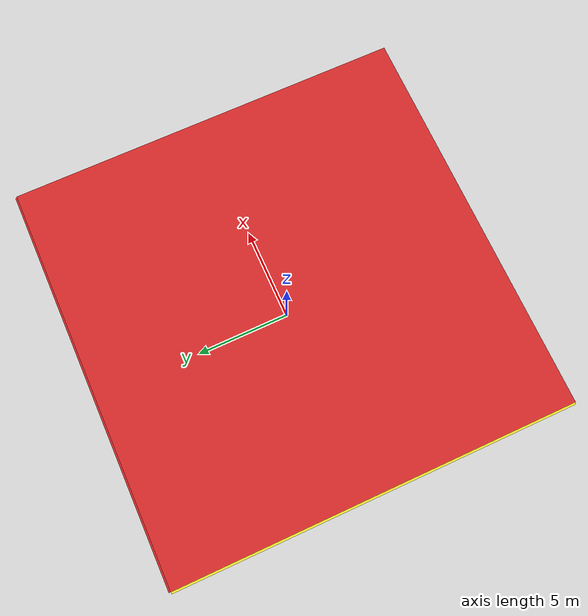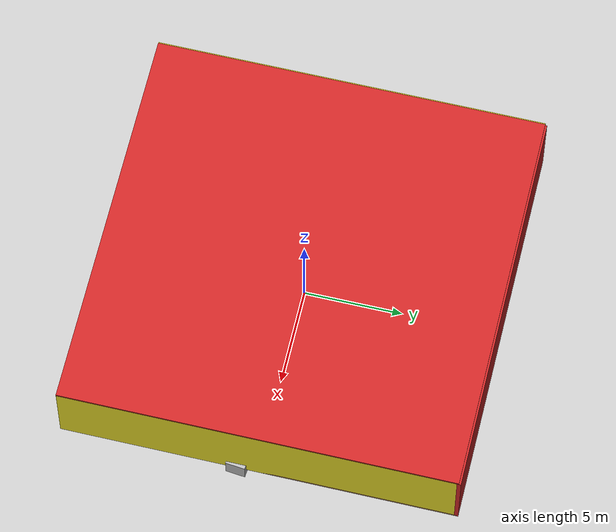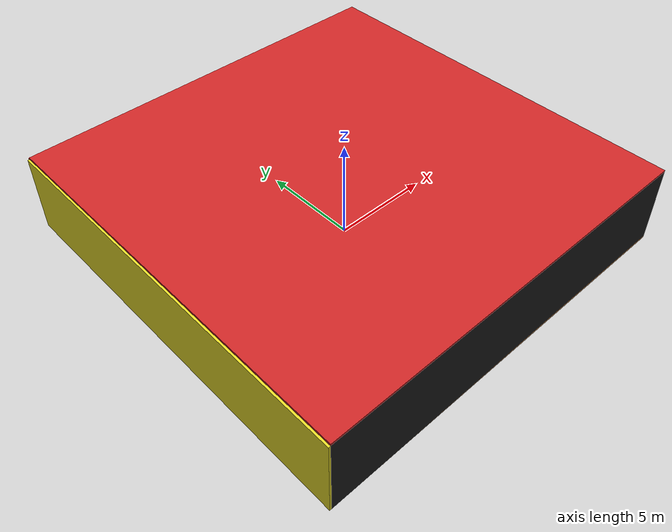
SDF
<sdf version="1.4">
 <world name="default">
  <physics type="ode">
   <max_step_size>0.001</max_step_size>
   <real_time_factor>1</real_time_factor>
   <real_time_update_rate>1000</real_time_update_rate>
   <gravity>0 0 -9.8</gravity>
  </physics>
  <scene><ambient>0.4 0.4 0.4 1</ambient><background>0.7 0.7 0.7 1</background><shadows>1</shadows></scene>
  <model name="Surrounding">
   <static>1</static>
   <link name="Ceiling">
    <collision name="Ceiling_Collision"><geometry><box><size>20 20 0.1</size></box></geometry></collision>
    <visual name="Ceiling_Visual">
     <geometry><box><size>20 20 0.1</size></box></geometry>
     <material>
      <script><uri>file://media/materials/scripts/gazebo.material</uri><name>Gazebo/Red</name></script>
     </material>
    </visual>
    <pose>0 0 4.05 0 0 0</pose>
   </link>
   <link name="Wall_South">
    <collision name="Wall_South_Collision">
     <geometry><box><size>20 0 4</size></box></geometry>
     <pose>0 0 2 0 -0 0</pose>
    </collision>
    <visual name="Wall_South_Visual">
     <pose>0 0 2 0 -0 0</pose>
     <geometry><box><size>20 0 4</size></box></geometry>
     <material>
      <script><uri>file://media/materials/scripts/gazebo.material</uri><name>Gazebo/Black</name></script>
     </material>
    </visual>
    <velocity_decay><linear>0</linear><angular>0</angular></velocity_decay>
    <pose>0 -10 0 0 -0 0</pose>
   </link>
   <link name="Wall_East">
    <collision name="Wall_21_Collision">
     <geometry><box><size>20 0 4</size></box></geometry>
     <pose>0 0 2 0 -0 0</pose>
    </collision>
    <visual name="Wall_21_Visual">
     <pose>0 0 2 0 -0 0</pose>
     <geometry><box><size>20 0 4</size></box></geometry>
     <material>
      <script><uri>file://media/materials/scripts/gazebo.material</uri><name>Gazebo/Yellow</name></script>
     </material>
    </visual>
    <velocity_decay><linear>0</linear><angular>0</angular></velocity_decay>
    <pose>10 0 0 0 -0 1.5708</pose>
   </link>
   <link name="Wall_North">
    <collision name="Wall_22_Collision">
     <geometry><box><size>20 0.2 4</size></box></geometry>
     <pose>0 0 2 0 -0 0</pose>
    </collision>
    <visual name="Wall_22_Visual">
     <pose>0 0 2 0 -0 0</pose>
     <geometry><box><size>20 0.2 4</size></box></geometry>
     <material>
      <script><uri>file://media/materials/scripts/gazebo.material</uri><name>Gazebo/Red</name></script>
     </material>
    </visual>
    <velocity_decay><linear>0</linear><angular>0</angular></velocity_decay>
    <pose>0 10 0 0 -0 0</pose>
   </link>
   <link name="Wall_West">
    <collision name="Wall_23_Collision">
     <geometry><box><size>20 0.2 4</size></box></geometry>
     <pose>0 0 2 0 -0 0</pose>
    </collision>
    <visual name="Wall_23_Visual">
     <pose>0 0 2 0 -0 0</pose>
     <geometry><box><size>20 0.2 4</size></box></geometry>
     <material>
      <script><uri>file://media/materials/scripts/gazebo.material</uri><name>Gazebo/Yellow</name></script>
     </material>
    </visual>
    <velocity_decay><linear>0</linear><angular>0</angular></velocity_decay>
    <pose>-10 0 0 0 0 -1.5708</pose>
   </link>
   <link name="Ground_link">
    <collision name="collision">
     <pose>0 0 .05 0 -0 0</pose>
     <geometry><box><size>20 20 0.1</size></box></geometry>
    </collision>
    <visual name="visual">
     <pose>0 0 .05 0 -0 0</pose>
     <geometry><box><size>20 20 0.1</size></box></geometry>
     <material>
      <script><uri>file://media/materials/scripts/gazebo.material</uri><name>Gazebo/Wood</name></script>
     </material>
    </visual>
   </link>
   <static>1</static>
  </model>
  <spherical_coordinates>
   <surface_model>EARTH_WGS84</surface_model>
   <latitude_deg>0</latitude_deg>
   <longitude_deg>0</longitude_deg>
   <elevation>0</elevation>
   <heading_deg>0</heading_deg>
  </spherical_coordinates>
  <light name="lightball_0" type="diffuse">
   <diffuse>0.8 0.8 0.8 1</diffuse>
   <specular>0.2 0.2 0.2 1</specular>
   <attenuation>
    <range>100</range>
    <constant>0.7</constant>
    <linear>0.01</linear>
    <quadratic>0.001</quadratic>
   </attenuation>
   <direction>-0.5 0.1 -0.9</direction>
   <pose>-8.56949837061 6.66300911186 1.84138675928 0 0 0</pose>
  </light>
  <light name="lightball_1" type="diffuse">
   <diffuse>0.8 0.8 0.8 1</diffuse>
   <specular>0.2 0.2 0.2 1</specular>
   <attenuation>
    <range>100</range>
    <constant>0.7</constant>
    <linear>0.01</linear>
    <quadratic>0.001</quadratic>
   </attenuation>
   <direction>-0.5 0.1 -0.9</direction>
   <pose>-8.56834912854 -6.46728062456 3.22390447064 0 0 0</pose>
  </light>
  <light name="lightball_2" type="diffuse">
   <diffuse>0.8 0.8 0.8 1</diffuse>
   <specular>0.2 0.2 0.2 1</specular>
   <attenuation>
    <range>100</range>
    <constant>0.7</constant>
    <linear>0.01</linear>
    <quadratic>0.001</quadratic>
   </attenuation>
   <direction>-0.5 0.1 -0.9</direction>
   <pose>3.40697351018 7.07978784144 1.06424799991 0 0 0</pose>
  </light>
  <light name="lightball_3" type="diffuse">
   <diffuse>0.8 0.8 0.8 1</diffuse>
   <specular>0.2 0.2 0.2 1</specular>
   <attenuation>
    <range>100</range>
    <constant>0.7</constant>
    <linear>0.01</linear>
    <quadratic>0.001</quadratic>
   </attenuation>
   <direction>-0.5 0.1 -0.9</direction>
   <pose>-7.08623137309 -7.58659776738 3.53610375136 0 0 0</pose>
  </light>
  <light name="lightball_4" type="diffuse">
   <diffuse>0.8 0.8 0.8 1</diffuse>
   <specular>0.2 0.2 0.2 1</specular>
   <attenuation>
    <range>100</range>
    <constant>0.7</constant>
    <linear>0.01</linear>
    <quadratic>0.001</quadratic>
   </attenuation>
   <direction>-0.5 0.1 -0.9</direction>
   <pose>0.176254967356 -6.45288988199 0.624339491833 0 0 0</pose>
  </light>
  <light name="lightball_5" type="diffuse">
   <diffuse>0.8 0.8 0.8 1</diffuse>
   <specular>0.2 0.2 0.2 1</specular>
   <attenuation>
    <range>100</range>
    <constant>0.7</constant>
    <linear>0.01</linear>
    <quadratic>0.001</quadratic>
   </attenuation>
   <direction>-0.5 0.1 -0.9</direction>
   <pose>-2.97969227381 4.14172351926 0.710179111304 0 0 0</pose>
  </light>
  <light name="lightball_6" type="diffuse">
   <diffuse>0.8 0.8 0.8 1</diffuse>
   <specular>0.2 0.2 0.2 1</specular>
   <attenuation>
    <range>100</range>
    <constant>0.7</constant>
    <linear>0.01</linear>
    <quadratic>0.001</quadratic>
   </attenuation>
   <direction>-0.5 0.1 -0.9</direction>
   <pose>-0.239144558558 -2.01478156378 1.85584460169 0 0 0</pose>
  </light>
  <light name="lightball_7" type="diffuse">
   <diffuse>0.8 0.8 0.8 1</diffuse>
   <specular>0.2 0.2 0.2 1</specular>
   <attenuation>
    <range>100</range>
    <constant>0.7</constant>
    <linear>0.01</linear>
    <quadratic>0.001</quadratic>
   </attenuation>
   <direction>-0.5 0.1 -0.9</direction>
   <pose>-5.9327404389 0.956412846884 3.68511962829 0 0 0</pose>
  </light>
  <include>
   <uri>model://robocup_3Dsim_goal</uri>
   <pose>-4.19739360148 1.92074902139 0 0 0 1.79496444238</pose>
  </include>
  <include>
   <uri>model://textured_shapes</uri>
   <pose>-2.231958488 6.66160075053 0 0 0 0.513285453051</pose>
  </include>
  <include>
   <uri>model://textured_shapes</uri>
   <pose>8.15597183853 -0.879911280571 0 0 0 1.47006379014</pose>
  </include>
  <include>
   <uri>model://robocup_3Dsim_goal</uri>
   <pose>7.50360205331 6.83916560648 0 0 0 0.438246957334</pose>
  </include>
 </world>
</sdf>

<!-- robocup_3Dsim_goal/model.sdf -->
<sdf version="1.5">
  <model name="robocup_3d_goal">
    <static>true</static>
    <link name="left_post">
      <pose>0 1.05 0.45 0 0 0</pose>
      <collision name="collision">
        <geometry>
          <cylinder>
            <radius>0.05</radius>
            <length>0.9</length>
          </cylinder>
        </geometry>
      </collision>
      <visual name="visual">
        <geometry>
          <cylinder>
            <radius>0.05</radius>
            <length>0.9</length>
          </cylinder>
        </geometry>
        <material>
          <script>
            <uri>file://media/materials/scripts/gazebo.material</uri>
            <name>Gazebo/ZincYellow</name>
          </script>
        </material>
      </visual>
    </link>
    <link name="left_support_horiz_lower">
      <pose>0.30 1.05 0.01 0 0 0</pose>
      <collision name="collision">
        <geometry>
          <box>
            <size>0.50 0.02 0.02</size>
          </box>
        </geometry>
      </collision>
      <visual name="visual">
        <geometry>
          <box>
            <size>0.50 0.02 0.02</size>
          </box>
        </geometry>
        <material>
          <script>
            <uri>file://media/materials/scripts/gazebo.material</uri>
            <name>Gazebo/White</name>
          </script>
        </material>
      </visual>
    </link>
    <link name="left_support_horiz_upper">
      <pose>0.30 1.05 0.79 0 0 0</pose>
      <collision name="collision">
        <geometry>
          <box>
            <size>0.50 0.02 0.02</size>
          </box>
        </geometry>
      </collision>
      <visual name="visual">
        <geometry>
          <box>
            <size>0.50 0.02 0.02</size>
          </box>
        </geometry>
        <material>
          <script>
            <uri>file://media/materials/scripts/gazebo.material</uri>
            <name>Gazebo/White</name>
          </script>
        </material>
      </visual>
    </link>
    <link name="left_support_vertical">
      <pose>0.56 1.05 0.4 0 1.5708 0</pose>
      <collision name="collision">
        <geometry>
          <box>
            <size>0.80 0.02 0.02</size>
          </box>
        </geometry>
      </collision>
      <visual name="visual">
        <geometry>
          <box>
            <size>0.80 0.02 0.02</size>
          </box>
        </geometry>
        <material>
          <script>
            <uri>file://media/materials/scripts/gazebo.material</uri>
            <name>Gazebo/White</name>
          </script>
        </material>
      </visual>
    </link>
    <link name="right_support_horiz_lower">
      <pose>0.30 -1.05 0.01 0 0 0</pose>
      <collision name="collision">
        <geometry>
          <box>
            <size>0.50 0.02 0.02</size>
          </box>
        </geometry>
      </collision>
      <visual name="visual">
        <geometry>
          <box>
            <size>0.50 0.02 0.02</size>
          </box>
        </geometry>
        <material>
          <script>
            <uri>file://media/materials/scripts/gazebo.material</uri>
            <name>Gazebo/White</name>
          </script>
        </material>
      </visual>
    </link>
    <link name="right_support_horiz_upper">
      <pose>0.30 -1.05 0.79 0 0 0</pose>
      <collision name="collision">
        <geometry>
          <box>
            <size>0.50 0.02 0.02</size>
          </box>
        </geometry>
      </collision>
      <visual name="visual">
        <geometry>
          <box>
            <size>0.50 0.02 0.02</size>
          </box>
        </geometry>
        <material>
          <script>
            <uri>file://media/materials/scripts/gazebo.material</uri>
            <name>Gazebo/White</name>
          </script>
        </material>
      </visual>
    </link>
    <link name="right_support_vertical">
      <pose>0.56 -1.05 0.4 0 1.5708 0</pose>
      <collision name="collision">
        <geometry>
          <box>
            <size>0.80 0.02 0.02</size>
          </box>
        </geometry>
      </collision>
      <visual name="visual">
        <geometry>
          <box>
            <size>0.80 0.02 0.02</size>
          </box>
        </geometry>
        <material>
          <script>
            <uri>file://media/materials/scripts/gazebo.material</uri>
            <name>Gazebo/White</name>
          </script>
        </material>
      </visual>
    </link>
    <link name="center_support_horiz_lower">
      <pose>0.56 0 0.01 0 1.5708 0</pose>
      <collision name="collision">
        <geometry>
          <box>
            <size>0.02 2.08 0.02</size>
          </box>
        </geometry>
      </collision>
      <visual name="visual">
        <geometry>
          <box>
            <size>0.02 2.08 0.02</size>
          </box>
        </geometry>
        <material>
          <script>
            <uri>file://media/materials/scripts/gazebo.material</uri>
            <name>Gazebo/White</name>
          </script>
        </material>
      </visual>
    </link>
    <link name="center_support_horiz_upper">
      <pose>0.56 0 0.79 0 1.5708 0</pose>
      <collision name="collision">
        <geometry>
          <box>
            <size>0.02 2.08 0.02</size>
          </box>
        </geometry>
      </collision>
      <visual name="visual">
        <geometry>
          <box>
            <size>0.02 2.08 0.02</size>
          </box>
        </geometry>
        <material>
          <script>
            <uri>file://media/materials/scripts/gazebo.material</uri>
            <name>Gazebo/White</name>
          </script>
        </material>
      </visual>
    </link>
    <link name="right_post">
      <pose>0 -1.05 0.45 0 0 0</pose>
      <collision name="collision">
        <geometry>
          <cylinder>
            <radius>0.05</radius>
            <length>0.9</length>
          </cylinder>
        </geometry>
      </collision>
      <visual name="visual">
        <geometry>
          <cylinder>
            <radius>0.05</radius>
            <length>0.9</length>
          </cylinder>
        </geometry>
        <material>
          <script>
            <uri>file://media/materials/scripts/gazebo.material</uri>
            <name>Gazebo/ZincYellow</name>
          </script>
        </material>
      </visual>
    </link>
    <link name="crossbar">
      <pose>0 0 0.85 1.57 1.57 0</pose>
      <collision name="collision">
        <geometry>
          <cylinder>
            <radius>0.05</radius>
            <length>2.0</length>
          </cylinder>
        </geometry>
      </collision>
      <visual name="visual">
        <geometry>
          <cylinder>
            <radius>0.05</radius>
            <length>2.0</length>
          </cylinder>
        </geometry>
        <material>
          <script>
            <uri>file://media/materials/scripts/gazebo.material</uri>
            <name>Gazebo/ZincYellow</name>
          </script>
        </material>
      </visual>
    </link>
    <link name="center_net">
      <pose>0.56 0 0.40 0 0 0</pose>
      <collision name="collision">
        <geometry>
          <box>
            <size>0.01 2.1 0.80</size>
          </box>
        </geometry>
      </collision>
      <visual name="visual">
        <geometry>
          <box>
            <size>0.01 2.1 0.80</size>
          </box>
        </geometry>
        <material>
          <script>
            <uri>model://../model_source/models/robocup09_spl_field/materials/scripts/</uri>
            <uri>model://../model_source/models/robocup09_spl_field/materials/textures/</uri>
            <name>RoboCup/Net</name>
          </script>
        </material>
      </visual>
    </link>
    <link name="left_net">
      <pose>0.30 1.05 0.40 0 0 0</pose>
      <collision name="collision">
        <geometry>
          <box>
            <size>0.50 0.01 0.76</size>
          </box>
        </geometry>
      </collision>
      <visual name="visual">
        <geometry>
          <box>
            <size>0.50 0.01 0.76</size>
          </box>
        </geometry>
        <material>
          <script>
            <uri>model://../model_source/models/robocup09_spl_field/materials/scripts/</uri>
            <uri>model://../model_source/models/robocup09_spl_field/materials/textures/</uri>
            <name>RoboCup/Net</name>
          </script>
        </material>
      </visual>
    </link>
    <link name="right_net">
      <pose>0.30 -1.05 0.40 0 0 0</pose>
      <collision name="collision">
        <geometry>
          <box>
            <size>0.50 0.01 0.76</size>
          </box>
        </geometry>
      </collision>
      <visual name="visual">
        <geometry>
          <box>
            <size>0.50 0.01 0.76</size>
          </box>
        </geometry>
        <material>
          <script>
            <uri>model://../model_source/models/robocup09_spl_field/materials/scripts/</uri>
            <uri>model://../model_source/models/robocup09_spl_field/materials/textures/</uri>
            <name>RoboCup/Net</name>
          </script>
        </material>
      </visual>
    </link>
  </model>
</sdf>

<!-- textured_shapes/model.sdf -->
<sdf version="1.6">
  <model name="textured_shapes">
    <pose>0 0 0.5 0 0 0</pose>
    <link name="box">
      <pose>0 -1.5 0 0 0 0</pose>
      <collision name="collision">
        <geometry>
          <box>
            <size>1 1 1</size>
          </box>
        </geometry>
      </collision>
      <visual name="visual">
        <geometry>
          <box>
            <size>1 1 1</size>
          </box>
        </geometry>
        <material>
          <script>
            <uri>model://../model_source/models/textured_shapes/materials/scripts</uri>
            <uri>model://../model_source/models/textured_shapes/materials/textures</uri>
            <name>TexturedShape/Squares</name>
          </script>
        </material>
      </visual>
    </link>
    <link name="sphere">
      <collision name="collision">
        <geometry>
          <sphere>
            <radius>0.5</radius>
          </sphere>
        </geometry>
      </collision>
      <visual name="visual">
        <geometry>
          <sphere>
            <radius>0.5</radius>
          </sphere>
        </geometry>
        <material>
          <script>
            <uri>model://../model_source/models/textured_shapes/materials/scripts</uri>
            <uri>model://../model_source/models/textured_shapes/materials/textures</uri>
            <name>TexturedShape/Squares</name>
          </script>
        </material>
      </visual>
    </link>
    <link name="cylinder">
      <pose>0 1.5 0 0 0 0</pose>
      <collision name="collision">
        <geometry>
          <cylinder>
            <radius>0.5</radius>
            <length>1</length>
          </cylinder>
        </geometry>
      </collision>
      <visual name="visual">
        <geometry>
          <cylinder>
            <radius>0.5</radius>
            <length>1</length>
          </cylinder>
        </geometry>
        <material>
          <script>
            <uri>model://../model_source/models/textured_shapes/materials/scripts</uri>
            <uri>model://../model_source/models/textured_shapes/materials/textures</uri>
            <name>TexturedShape/Squares</name>
          </script>
        </material>
      </visual>
    </link>
  </model>
</sdf>
